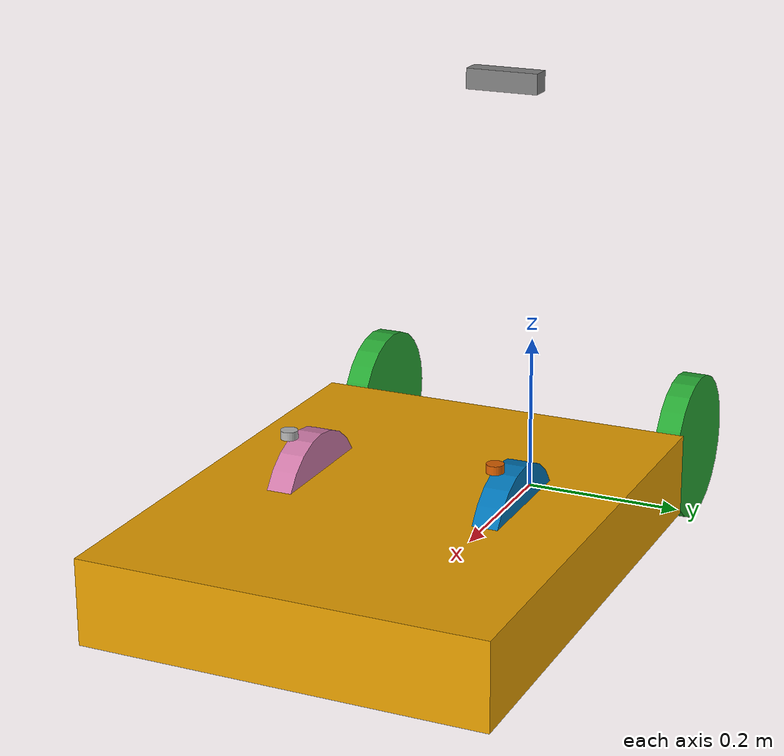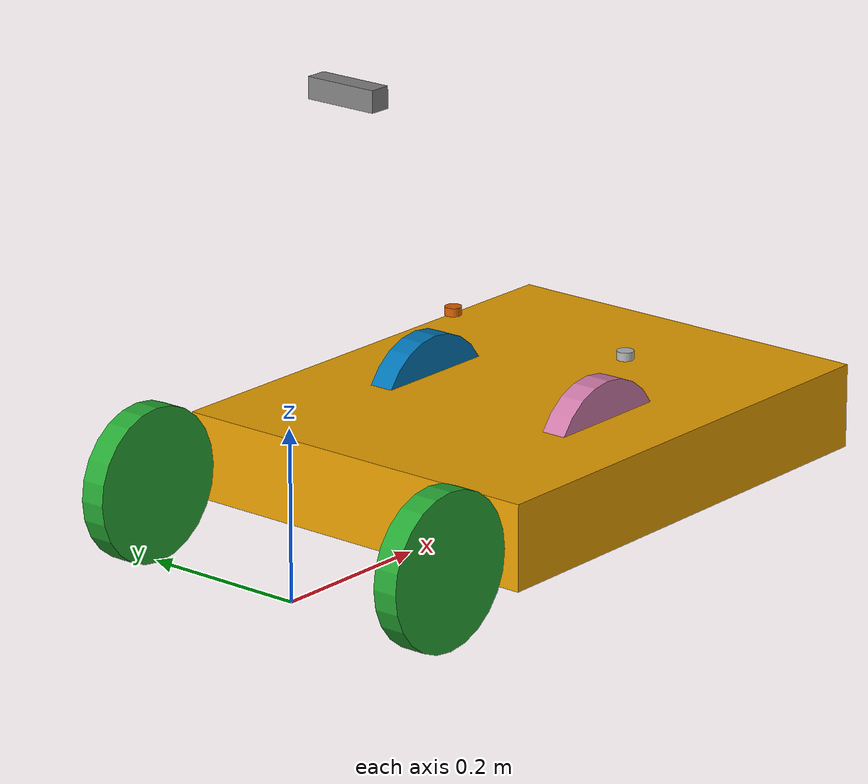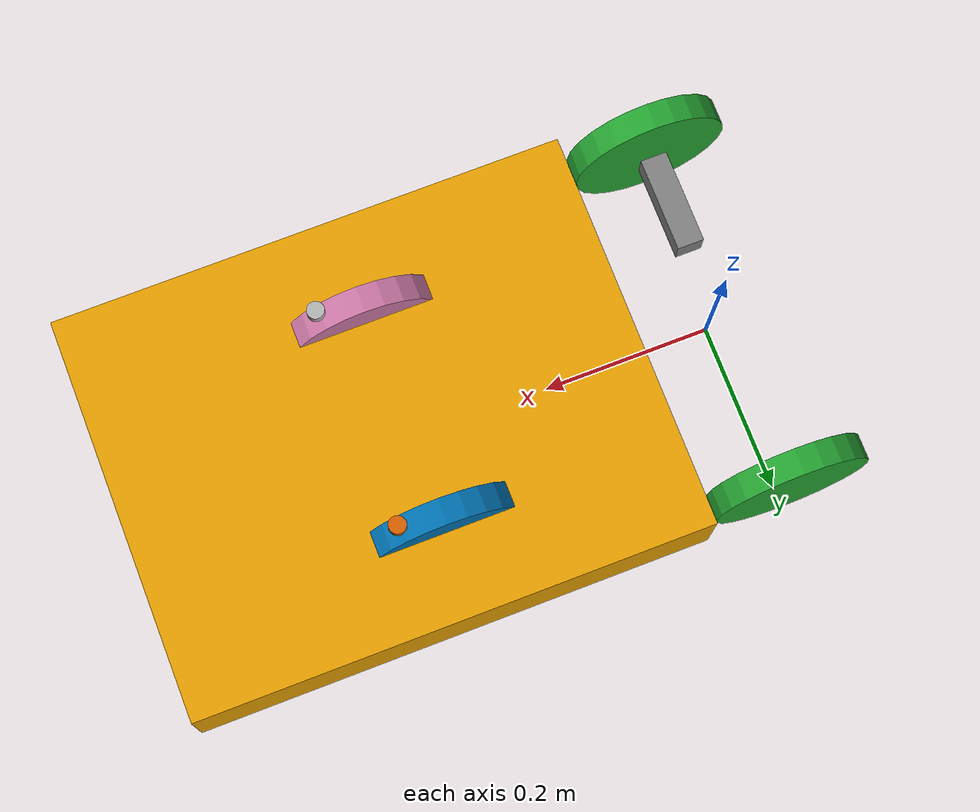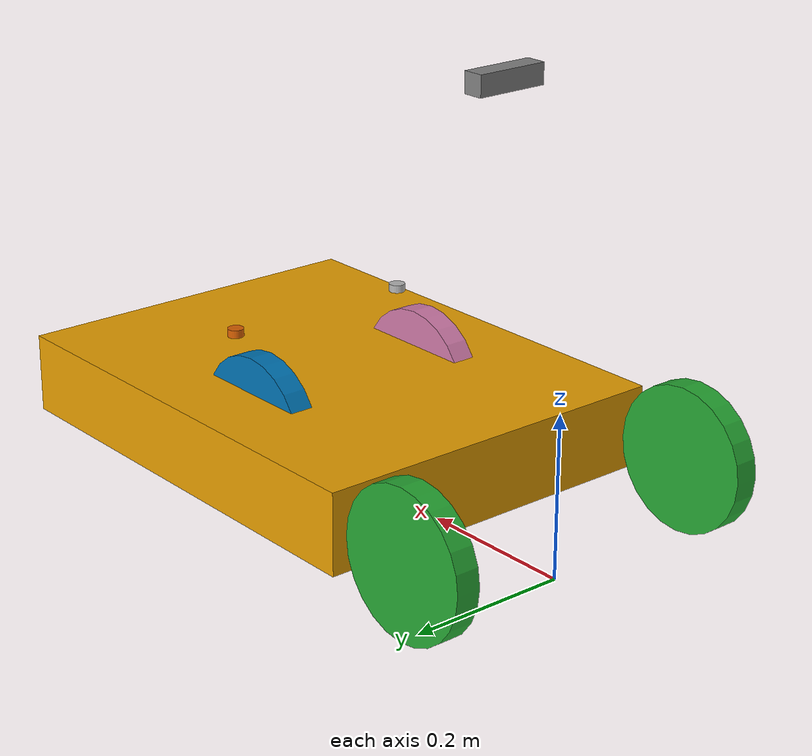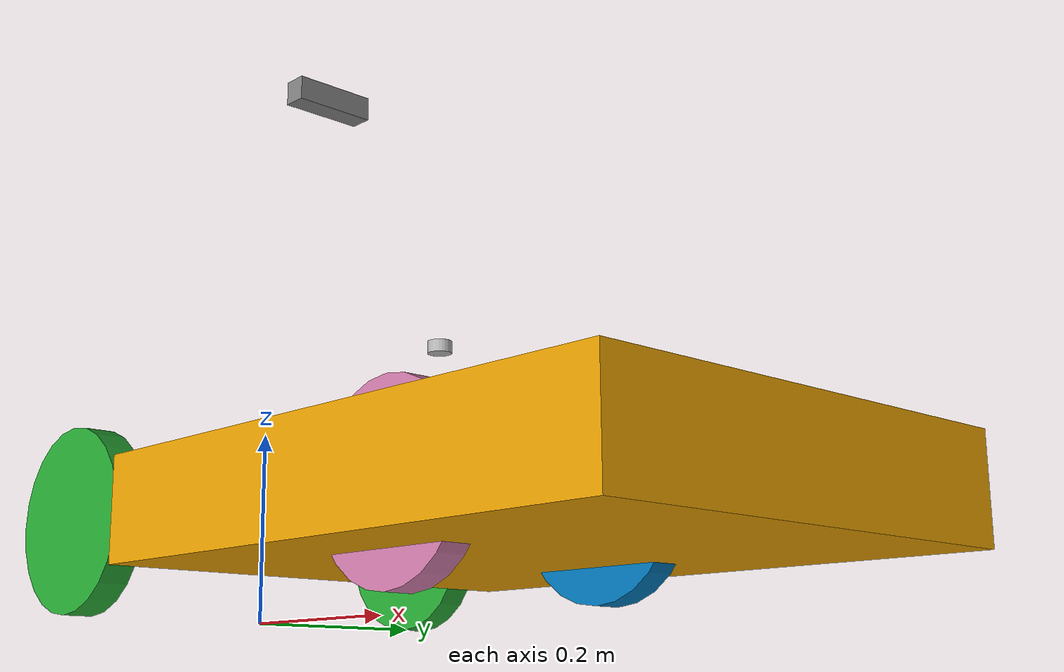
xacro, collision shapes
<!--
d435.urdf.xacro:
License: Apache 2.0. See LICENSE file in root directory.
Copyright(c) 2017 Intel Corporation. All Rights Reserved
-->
<?xml version="1.0"?>
<robot  xmlns:xacro="http://ros.org/wiki/xacro" name="rt1" >

    <xacro:include filename="$(find rt1_description)/urdf/caster.urdf.xacro" />
    <xacro:include filename="$(find rt1_description)/urdf/wheel.urdf.xacro" />
    <xacro:include filename="$(find rt1_description)/urdf/materials.urdf.xacro" />
    <xacro:include filename="$(find rt1_description)/urdf/d435.urdf.xacro" />

    <xacro:arg name="mesh_enabled" default="true" />
    <xacro:arg name="robot_namespace" default=""/>

    <link   name = "base_link">
        <inertial>
            <origin xyz="0.21808388 0.00000000 0.32343770"/>
            <mass value="13.00000000"/>
            <inertia ixx="0.93321171" ixy="-0.00000000" ixz="0.11303755" iyy="0.95778312" iyz="0.00000000" izz="0.44638636"/>
        </inertial>

        <visual>
            <origin xyz="0 0 0.0" rpy="0 0 0" />
            <geometry>
                <mesh filename="package://rt1_description/meshes/rt1.dae" />

            </geometry>
        </visual>
        <collision>
            <origin xyz="0.4 0 0.0" rpy="0 0 0" />
            <geometry>
                <box size="0.60 0.47 0.1" />
            </geometry>
            <material name="Blue" />
        </collision>
    </link>

    <link   name = "base_footprint"/>

    <joint name = "base_joint"  type = "fixed">
        <parent link="base_footprint"/>
        <child link="base_link"/>
        <origin xyz="0.0 0.0 0.09" rpy="0 0 0" />
        <axis xyz="0 1 0" rpy="0 0 0" />
    </joint>

    <xacro:wheel wheel_prefix="left" parent_link="base_link" >
        <origin xyz="0.0 0.2095 0.0" rpy="0 0 0" />
    </xacro:wheel>

    <xacro:wheel wheel_prefix="right" parent_link="base_link" >
        <origin xyz="0.0 -0.2095 0.0" rpy="0 0 0" />
    </xacro:wheel>

    <xacro:caster caster_prefix="castL" parent_link="base_link" >
        <origin xyz="0.425 0.125 0.11" rpy="0 0 0" />
    </xacro:caster>

    <xacro:caster caster_prefix="castR" parent_link="base_link" >
        <origin xyz="0.425 -0.125 0.11" rpy="0 0 0" />
    </xacro:caster>

    <xacro:sensor_d435 name="camera"  parent="base_link" >
        <origin xyz="0.1 0.0 0.45" rpy="0 0 0" />
    </xacro:sensor_d435>

    <gazebo>
        <plugin name="gazebo_ros_control" filename="libgazebo_ros_control.so">
        <robotNamespace>$(arg robot_namespace)</robotNamespace>
        <legacyModeNS>true</legacyModeNS>
        </plugin>
    </gazebo>

    <link name="hokuyo_link">
        <visual>
            <origin xyz="0 0 0" rpy="0 0 0" />
        <geometry>
            <mesh filename="package://rt1_description/meshes/hokuyo.dae" />
        </geometry>
            <material name="Blue" />
        </visual>
    </link>
    <joint name="hokuyo_joint" type="fixed">
        <origin xyz="0.4 0 0.2" rpy="0 0 0" />
        <parent link="base_link"/>
        <child link="hokuyo_link" />
    </joint>

    <gazebo reference="hokuyo_link">
        <material>Gazebo/Blue</material>
        <turnGravityOff>false</turnGravityOff>
        <sensor type="ray" name="head_hokuyo_sensor">
        <pose>0 0 0 0 0 0</pose>
        <visualize>true</visualize>
        <update_rate>40</update_rate>
        <ray>
            <scan>
                <horizontal>
                <samples>720</samples>
                <resolution>1</resolution>
                <min_angle>-1.570796</min_angle>
                <max_angle>1.570796</max_angle>
                </horizontal>
            </scan>
            <range>
                <min>0.10</min>
                <max>10.0</max>
                <resolution>0.001</resolution>
            </range>
        </ray>
            <plugin name="gazebo_ros_head_hokuyo_controller" filename="libgazebo_ros_laser.so">
                <topicName>/scan</topicName>
                <frameName>hokuyo_link</frameName>
            </plugin>
        </sensor>
    </gazebo>

</robot>

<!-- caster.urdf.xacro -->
<robot xmlns:xacro="http://ros.org/wiki/xacro" >

	<!-- Caster Dimensions -->
    <xacro:property name="caster_wheel_length" value="0.03" />
    <xacro:property name="caster_wheel_radius" value="0.09"/>

	 <xacro:property name="caster_base_length" value="0.01" />
    <xacro:property name="caster_base_radius" value="0.01" />

	<xacro:property name="caster_base_joint_x" value="-0.05" />
    <xacro:property name="caster_base_joint_z" value="-0.105" />

	<xacro:property name="caster_base_link_z" value="-0.05615" />
    <xacro:property name="M_PI" value="3.14" />

	<xacro:property name="wheel_kp" value="600000" />
    <xacro:property name="wheel_kd" value="3" />
    <xacro:property name="wheel_mu1" value="10000000" />
    <xacro:property name="wheel_mu2" value="10000000" />

<xacro:macro name="caster" params="caster_prefix parent_link *joint_pose">
		<!-- Caster Wheel Link -->
		<link name="${caster_prefix}_caster_link">
			<inertial>
				<mass value="0.03837" />
				<origin xyz="0 0 0" />
				<inertia  ixx="0.000008221" ixy="0" ixz="0" iyy="0.000013003" iyz="0" izz="0.000008221" />
				</inertial>
			<visual>
                <origin xyz="0 0 0" rpy="${M_PI/2} 0 0" />
				<geometry>
					<mesh filename="package://rt1_description/meshes/rt1-caswheel.dae" />
				</geometry>
			</visual>
			<collision>
				<origin xyz="0 0 0" rpy="${M_PI/2} 0 0" />
				<geometry>
					<cylinder length="${caster_wheel_length}" radius="${caster_wheel_radius}" />
				</geometry>
			</collision>
		</link>

		<!-- Caster Base Link -->
        <link name="${caster_prefix}_caster_base">
			<inertial>
				<mass value="0.06597" />
				<origin xyz="0.0 0 0.0" />
				<inertia  ixx="0.000039912" ixy="0" ixz="0.000017794" iyy="0.000050728" iyz="0" izz="0.000035261" />
			</inertial>
			<visual>
				<origin xyz="0 0 0" rpy="0 0 0" />
				<geometry>
					<mesh filename="package://rt1_description/meshes/rt1-caster.dae" />
				</geometry>
			</visual>
			<collision>
				<origin xyz="0 0 0" rpy="0 0 0" />
				<geometry>
					<cylinder length="${caster_base_length}" radius="${caster_base_radius}" />
				</geometry>
			</collision>
		</link>

		<!-- Caster Base Link and Wheel Link Joint -->
        <joint name="${caster_prefix}_cwheel" type="fixed">
			<parent link="${caster_prefix}_caster_base"/>
			<child link="${caster_prefix}_caster_link"/>
			<origin xyz="${caster_base_joint_x} 0 ${caster_base_joint_z}" rpy="0 0 0" />
			<axis xyz="0 1 0" rpy="0 0 0" />
		</joint>

		<!-- Caster base and parent joint -->
		<joint name="${caster_prefix}_caster" type="fixed">
			<parent link="${parent_link}"/>
			<child link="${caster_prefix}_caster_base"/>
			<xacro:insert_block name="joint_pose"/>
			<axis xyz="0 0 1" rpy="0 0 0" />
			<dynamics friction="0.100" />
		</joint>

		<transmission name="${caster_prefix}_caster_trans" type="SimpleTransmission">
			<type>transmission_interface/SimpleTransmission</type>
			<actuator name="${caster_prefix}_caster_motor">
				<mechanicalReduction>1</mechanicalReduction>
			</actuator>
			<joint name="${caster_prefix}_caster">
				<hardwareInterface>hardware_interface/EffortJointInterface</hardwareInterface>
			</joint>
		</transmission>

		<transmission name="${caster_prefix}_casterbase_trans" type="SimpleTransmission">
			<type>transmission_interface/SimpleTransmission</type>
			<actuator name="${caster_prefix}_casterbase_motor">
				<mechanicalReduction>1</mechanicalReduction>
			</actuator>
			<joint name="${caster_prefix}_cwheel">
				<hardwareInterface>hardware_interface/EffortJointInterface</hardwareInterface>
			</joint>
		</transmission>

	</xacro:macro>

</robot>

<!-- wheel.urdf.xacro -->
<robot name="wheel" xmlns:xacro="http://ros.org/wiki/xacro" >

	<xacro:property name="wheel_kp" value="600000" />
    <xacro:property name="wheel_kd" value="3" />
    <xacro:property name="wheel_mu1" value="10000000" />
    <xacro:property name="wheel_mu2" value="10000000" />

<xacro:macro name="wheel" params="wheel_prefix parent_link *joint_pose">

		<!-- Wheel Link -->
		<link name="${wheel_prefix}_wheel_link">
			<inertial>
				<origin xyz="0 0 0"/>
				<mass value="0.500"/>
				<inertia ixx="0.0013541667" ixy="0" ixz="0" iyy="0.0013541667" iyz="0" izz="0.0025"/>
			</inertial>
			<visual>
				<material name="Green"/>
				<origin xyz="0 0 0" rpy="${M_PI/2} 0 0 " />
				<geometry>
					<mesh filename="package://rt1_description/meshes/rt1-caswheel.dae" />
				</geometry>
			</visual>
			<collision>
				<origin xyz="0 0 0" rpy="${M_PI/2} 0 0 " />
				<geometry>
					<cylinder length="0.03" radius="0.09" />
				</geometry>
			</collision>
		</link>

		<!-- Wheel Joint -->
		<joint name="${wheel_prefix}_wheel" type="continuous">
			<parent link="${parent_link}"/>
			<child link="${wheel_prefix}_wheel_link"/>
			<xacro:insert_block name="joint_pose"/>
			<axis xyz="0 1 0" rpy="0 0 0" />
			<dynamics damping="0.5" friction="100.0" />
		</joint>

		<!-- mu1 - 100 , mu2 - 100 , kp - 600000 kd -1  -->
		<gazebo reference="${wheel_prefix}_wheel_link">
			<mu1 value="${wheel_mu1}"/>
			<mu2 value="${wheel_mu2}"/>
			<kp>${wheel_kp}</kp>
    		<kd>${wheel_kd}</kd>
			<dampingFactor>0.05</dampingFactor>
			<fdir1 value="1 0 0"/>
		</gazebo>

		<transmission name="${wheel_prefix}_wheel_trans" type="SimpleTransmission">
			<type>transmission_interface/SimpleTransmission</type>
			<actuator name="${wheel_prefix}_wheel_motor">
				<mechanicalReduction>1</mechanicalReduction>
			</actuator>
			<joint name="${wheel_prefix}_wheel">
				<hardwareInterface>hardware_interface/VelocityJointInterface</hardwareInterface>
			</joint>
		</transmission>

</xacro:macro>

</robot>

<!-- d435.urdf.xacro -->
<robot name="sensor_d435" xmlns:xacro="http://ros.org/wiki/xacro">
  <!--File includes-->
  <xacro:include filename="$(find rt1_description)/urdf/d435.gazebo.xacro"/>

  <xacro:macro name="sensor_d435" params="name:=camera topics_ns:=camera parent *origin">
    <xacro:property name="M_PI" value="3.1415926535897931" />

    <!-- The following values are approximate, and the camera node
     publishing TF values with actual calibrated camera extrinsic values -->
    <xacro:property name="d435_cam_depth_to_left_ir_offset" value="0.0"/>
    <xacro:property name="d435_cam_depth_to_right_ir_offset" value="-0.050"/>
    <xacro:property name="d435_cam_depth_to_color_offset" value="0.015"/>

    <!-- The following values model the aluminum peripherial case for the
  	D435 camera, with the camera joint represented by the actual
  	peripherial camera tripod mount -->
    <xacro:property name="d435_cam_width" value="0.090"/>
    <xacro:property name="d435_cam_height" value="0.025"/>
    <xacro:property name="d435_cam_depth" value="0.02505"/>
    <xacro:property name="d435_cam_mount_from_center_offset" value="0.0149"/>

    <!-- The following offset is relative the the physical D435 camera peripherial
  	camera tripod mount -->
    <xacro:property name="d435_cam_depth_px" value="${d435_cam_mount_from_center_offset}"/>
    <xacro:property name="d435_cam_depth_py" value="0.0175"/>
    <xacro:property name="d435_cam_depth_pz" value="${d435_cam_height/2}"/>

    <material name="${name}_aluminum">
	    <color rgba="0.5 0.5 0.5 1"/>
    </material>

    <!-- camera body, with origin at bottom screw mount -->
    <joint name="${name}_joint" type="fixed">
      <xacro:insert_block name="origin" />
      <parent link="${parent}"/>
      <child link="${name}_bottom_screw_frame" />
    </joint>
    <link name="${name}_bottom_screw_frame"/>

    <joint name="${name}_link_joint" type="fixed">
      <origin xyz="0 ${d435_cam_depth_py} ${d435_cam_depth_pz}" rpy="0 0 0"/>
      <parent link="${name}_bottom_screw_frame"/>
      <child link="${name}_link" />
    </joint>

    <link name="${name}_link">
      <visual>
      <origin xyz="${d435_cam_mount_from_center_offset} ${-d435_cam_depth_py} 0" rpy="${M_PI/2} 0 ${M_PI/2}"/>
        <geometry>
          <mesh filename="package://rt1_description/meshes/d435.dae" />
        </geometry>
        <material name="${name}_aluminum"/>
      </visual>
      <collision>
        <origin xyz="0 ${-d435_cam_depth_py} 0" rpy="0 0 0"/>
        <geometry>
          <box size="${d435_cam_depth} ${d435_cam_width} ${d435_cam_height}"/>
        </geometry>
      </collision>
      <inertial>
        <!-- The following are not reliable values, and should not be used for modeling -->
        <mass value="0.564" />
        <origin xyz="0 0 0" />
        <inertia ixx="0.003881243" ixy="0.0" ixz="0.0" iyy="0.000498940" iyz="0.0" izz="0.003879257" />
      </inertial>
    </link>

    <!-- camera depth joints and links -->
    <joint name="${name}_depth_joint" type="fixed">
      <origin xyz="0 0 0" rpy="0 0 0"/>
      <parent link="${name}_link"/>
      <child link="${name}_depth_frame" />
    </joint>
    <link name="${name}_depth_frame"/>

    <joint name="${name}_depth_optical_joint" type="fixed">
      <origin xyz="0 0 0" rpy="${-M_PI/2} 0 ${-M_PI/2}" />
      <parent link="${name}_depth_frame" />
      <child link="${name}_depth_optical_frame" />
    </joint>
    <link name="${name}_depth_optical_frame"/>

    <!-- camera left IR joints and links -->
    <joint name="${name}_left_ir_joint" type="fixed">
      <origin xyz="0 ${d435_cam_depth_to_left_ir_offset} 0" rpy="0 0 0" />
      <parent link="${name}_depth_frame" />
      <child link="${name}_left_ir_frame" />
    </joint>
    <link name="${name}_left_ir_frame"/>

    <joint name="${name}_left_ir_optical_joint" type="fixed">
      <origin xyz="0 0 0" rpy="${-M_PI/2} 0 ${-M_PI/2}" />
      <parent link="${name}_left_ir_frame" />
      <child link="${name}_left_ir_optical_frame" />
    </joint>
    <link name="${name}_left_ir_optical_frame"/>

    <!-- camera right IR joints and links -->
    <joint name="${name}_right_ir_joint" type="fixed">
      <origin xyz="0 ${d435_cam_depth_to_right_ir_offset} 0" rpy="0 0 0" />
      <parent link="${name}_depth_frame" />
      <child link="${name}_right_ir_frame" />
    </joint>
    <link name="${name}_right_ir_frame"/>

    <joint name="${name}_right_ir_optical_joint" type="fixed">
      <origin xyz="0 0 0" rpy="${-M_PI/2} 0 ${-M_PI/2}" />
      <parent link="${name}_right_ir_frame" />
      <child link="${name}_right_ir_optical_frame" />
    </joint>
    <link name="${name}_right_ir_optical_frame"/>

    <!-- camera color joints and links -->
    <joint name="${name}_color_joint" type="fixed">
      <origin xyz="0 ${d435_cam_depth_to_color_offset} 0" rpy="0 0 0" />
      <parent link="${name}_depth_frame" />
      <child link="${name}_color_frame" />
    </joint>
    <link name="${name}_color_frame"/>

    <joint name="${name}_color_optical_joint" type="fixed">
      <origin xyz="0 0 0" rpy="${-M_PI/2} 0 ${-M_PI/2}" />
      <parent link="${name}_color_frame" />
      <child link="${name}_color_optical_frame" />
    </joint>
    <link name="${name}_color_optical_frame"/>

    <!-- Realsense Gazebo Plugin -->
    <xacro:gazebo_d435 camera_name="${name}" reference_link="${name}_link" topics_ns="${topics_ns}" depth_optical_frame="${name}_depth_optical_frame" color_optical_frame="${name}_color_optical_frame" infrared1_optical_frame="${name}_left_ir_optical_frame" infrared2_optical_frame="${name}_right_ir_optical_frame"/>

  </xacro:macro>
</robot>
